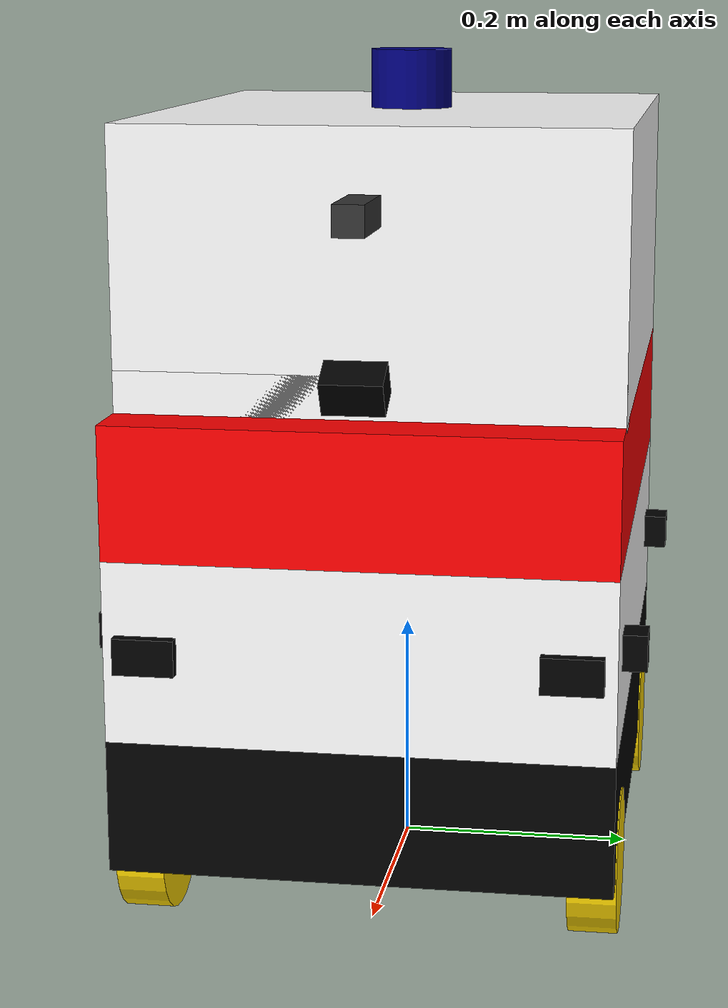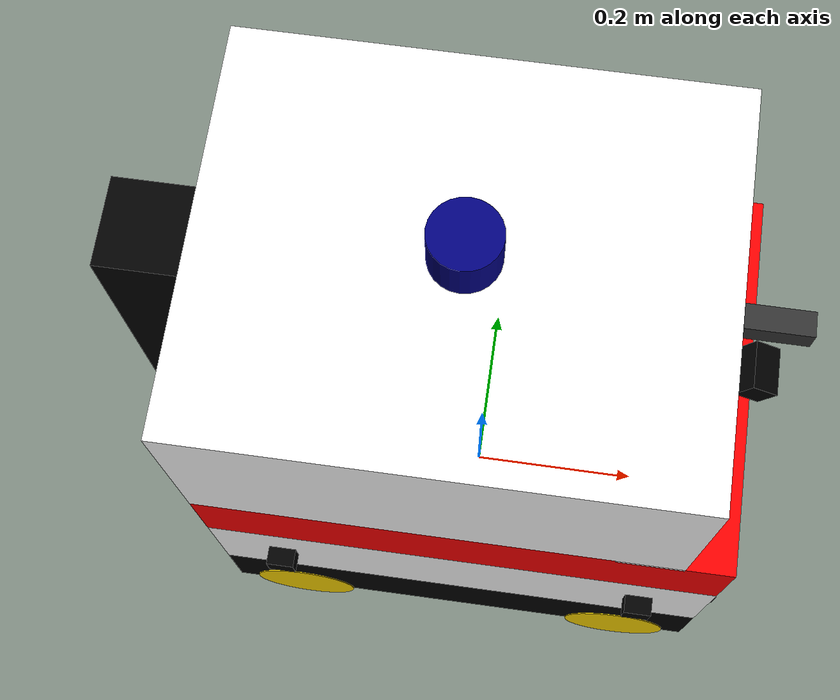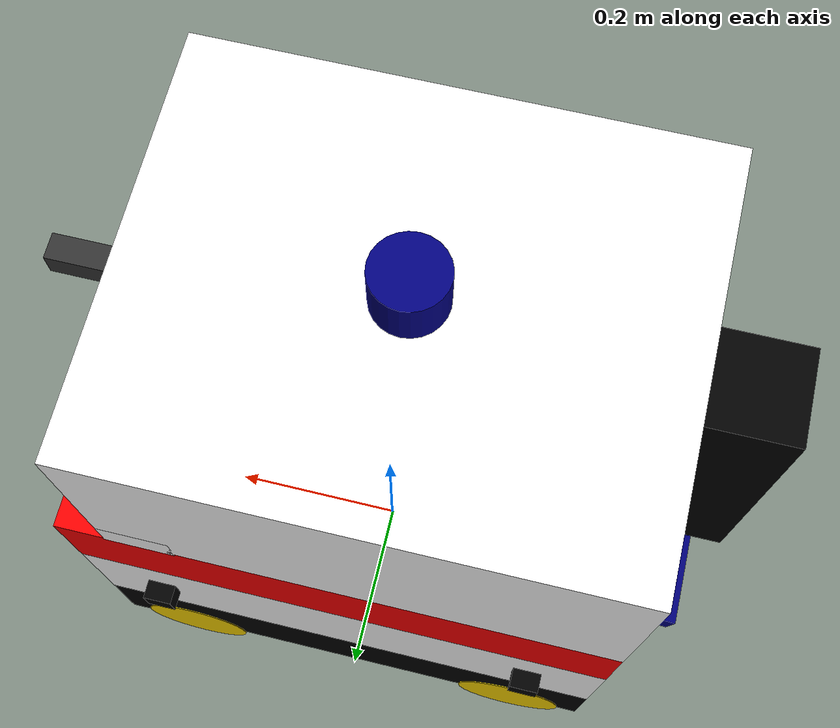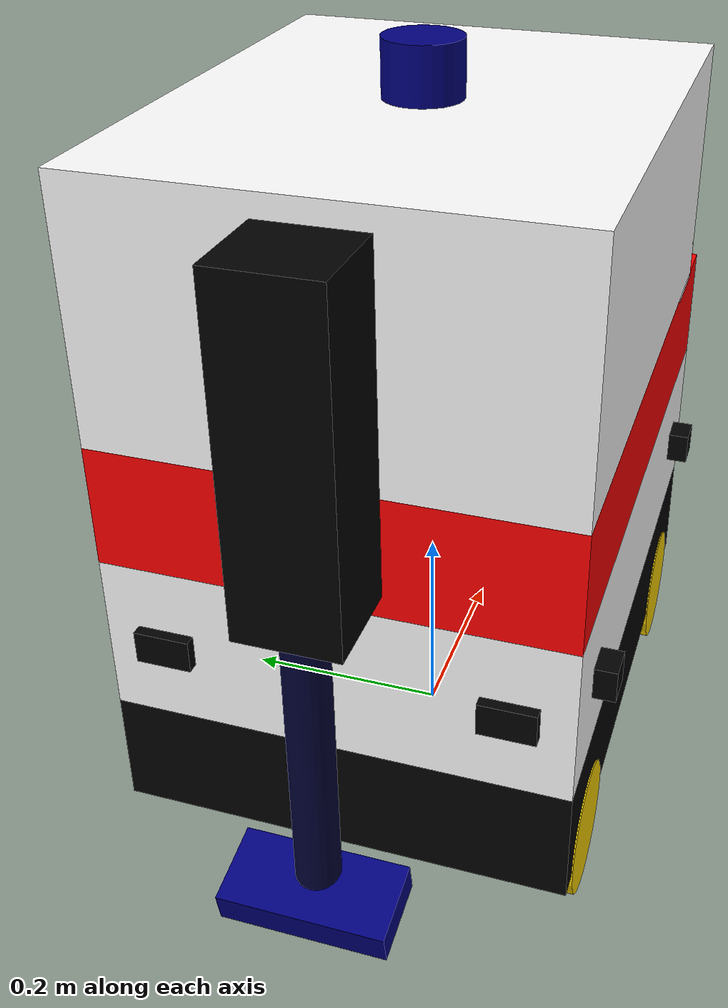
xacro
<?xml version="1.0"?>
<robot xmlns:xacro="http://www.ros.org/wiki/xacro" name="cleaning_robot">

        <link name="base_footprint"/>
        <link name="base_link">
            <inertial>
                <origin xyz="0.0 0.0 0.0" rpy="0.0 0.0 0.0"/>
                <mass value="15.0"/>
                <inertia ixx="0.2253" ixy="0.0" ixz="0.0" iyy="0.3933" iyz="0.0" izz="0.5883"/>
            </inertial>
            <visual name="">
                <origin xyz="0.0 0.0 0.0" rpy="0.0 0.0 0.0"/>
                <geometry>
                    <box size="0.550 0.410 0.11"/>
                </geometry>
                <material name="black">
                    <color rgba="0.0 0.0 0.0 0.9"/>
                    <texture filename=""/>
                </material>
            </visual>
            <collision>
                <origin xyz="0.0 0.0 0.0" rpy="0.0 0.0 0.0"/>
                <geometry>
                    <box size="0.550 0.410 0.11"/>
                </geometry>
            </collision>
        </link>
        <joint name="base_link_joint" type="fixed">
            <origin xyz="0.0 0.0 0.115" rpy="0.0 0.0 0.0"/>
            <parent link="base_footprint"/>
            <child link="base_link"/>
            <axis xyz="0.0 0.0 0.0"/>
            <limit lower="0.0" upper="0.0" effort="0.0" velocity="0.0"/>
        </joint>

        <link name="front_right_wheel">
            <inertial>
                <origin xyz="0.0 0.0 0.0" rpy="0.0 0.0 0.0"/>
                <mass value="0.5"/>
                <inertia ixx="0.000517" ixy="0.0" ixz="0.0" iyy="0.000900" iyz="0.0" izz="0.000517"/>
            </inertial>
            <visual name="yellow">
                <origin xyz="0.0 0.0 0.0" rpy="1.5708 0.0 0.0"/>
                <geometry>
                    <cylinder radius="0.06" length="0.04"/>
                </geometry>
                <material name="yellow">
                    <color rgba="1.0 0.85 0.0 1.0"/>
                </material>
            </visual>
            <collision>
                <origin xyz="0.0 0.0 0.0" rpy="1.5708 0.0 0.0"/>
                <geometry>
                    <cylinder radius="0.06" length="0.04"/>
                </geometry>
            </collision>
        </link>
        <joint name="front_right_wheel_joint" type="continuous">
            <parent link="base_link"/>
            <child link="front_right_wheel"/>
            <origin xyz="0.1925 -0.186 -0.055" rpy="0.0 0.0 0.0"/>
            <axis xyz="0 1 0"/>
        </joint>

        <link name="front_left_wheel">
            <inertial>
                <origin xyz="0.0 0.0 0.0" rpy="0.0 0.0 0.0"/>
                <mass value="0.5"/>
                <inertia ixx="0.000517" ixy="0.0" ixz="0.0" iyy="0.000900" iyz="0.0" izz="0.000517"/>
            </inertial>
            <visual name="yellow">
                <origin xyz="0.0 0.0 0.0" rpy="1.5708 0.0 0.0"/>
                <geometry>
                    <cylinder radius="0.06" length="0.04"/>
                </geometry>
                <material name="yellow">
                    <color rgba="1.0 0.85 0.0 1.0"/>
                </material>
            </visual>
            <collision>
                <origin xyz="0.0 0.0 0.0" rpy="1.5708 0.0 0.0"/>
                <geometry>
                    <cylinder radius="0.06" length="0.04"/>
                </geometry>
            </collision>
        </link>
        <joint name="front_left_wheel_joint" type="continuous">
            <parent link="base_link"/>
            <child link="front_left_wheel"/>
            <origin xyz="0.1925 0.186 -0.055" rpy="0.0 0.0 0.0"/>
            <axis xyz="0 1 0"/>
        </joint>

        <link name="back_left_wheel">
            <inertial>
                <origin xyz="0.0 0.0 0.0" rpy="0.0 0.0 0.0"/>
                <mass value="0.5"/>
                <inertia ixx="0.000517" ixy="0.0" ixz="0.0" iyy="0.000900" iyz="0.0" izz="0.000517"/>
            </inertial>
            <visual name="yellow">
                <origin xyz="0.0 0.0 0.0" rpy="1.5708 0.0 0.0"/>
                <geometry>
                    <cylinder radius="0.06" length="0.04"/>
                </geometry>
                <material name="yellow">
                    <color rgba="1.0 0.85 0.0 1.0"/>
                </material>
            </visual>
            <collision>
                <origin xyz="0.0 0.0 0.0" rpy="1.5708 0.0 0.0"/>
                <geometry>
                    <cylinder radius="0.06" length="0.04"/>
                </geometry>
            </collision>
        </link>
        <joint name="back_left_wheel_joint" type="continuous">
            <parent link="base_link"/>
            <child link="back_left_wheel"/>
            <origin xyz="-0.1925 0.186 -0.055" rpy="0.0 0.0 0.0"/>
            <axis xyz="0 1 0"/>
        </joint>

        <link name="back_right_wheel">
            <inertial>
                <origin xyz="0.0 0.0 0.0" rpy="0.0 0.0 0.0"/>
                <mass value="0.5"/>
                <inertia ixx="0.000517" ixy="0.0" ixz="0.0" iyy="0.000900" iyz="0.0" izz="0.000517"/>
            </inertial>
            <visual name="yellow">
                <origin xyz="0.0 0.0 0.0" rpy="1.5708 0.0 0.0"/>
                <geometry>
                    <cylinder radius="0.06" length="0.04"/>
                </geometry>
                <material name="yellow">
                    <color rgba="1.0 0.85 0.0 1.0"/>
                </material>
            </visual>
            <collision>
                <origin xyz="0.0 0.0 0.0" rpy="1.5708 0.0 0.0"/>
                <geometry>
                    <cylinder radius="0.06" length="0.04"/>
                </geometry>
            </collision>
        </link>
        <joint name="back_right_wheel_joint" type="continuous">
            <parent link="base_link"/>
            <child link="back_right_wheel"/>
            <origin xyz="-0.1925 -0.186 -0.055" rpy="0.0 0.0 0.0"/>
            <axis xyz="0 1 0"/>
        </joint>

        <link name="uper_body">
            <inertial>
                <origin xyz="0.0 0.0 0.0" rpy="0.0 0.0 0.0"/>
                <mass value="4.0"/>
                <inertia ixx="0.0635" ixy="0.0" ixz="0.0" iyy="0.1083" iyz="0.0" izz="0.1569"/>
            </inertial>
            <visual name="white">
                <origin xyz="0.0 0.0 0.0" rpy="0.0 0.0 0.0"/>
                <geometry>
                    <box size="0.550 0.410 0.15"/>
                </geometry>
                <material name="white">
                    <color rgba="1.0 1.0 1.0 1.0"/>
                    <texture filename=""/>
                </material>
            </visual>
            <collision>
                <origin xyz="0.0 0.0 0.0" rpy="0.0 0.0 0.0"/>
                <geometry>
                    <box size="0.550 0.410 0.15"/>
                </geometry>
            </collision>
        </link>
        <joint name="uper_body_joint" type="fixed">
            <origin xyz="0.0 0.0 0.13" rpy="0.0 0.0 0.0"/>
            <parent link="base_link"/>
            <child link="uper_body"/>
            <axis xyz="0.0 0.0 0.0"/>
            <limit lower="0.0" upper="0.0" effort="0.0" velocity="0.0"/>
        </joint>

        <!-- ========== 8x ULTRASONICS — ALL FACE FORWARD HORIZONTALLY ========== -->

        <link name="front_right_ultrasonic">
            <inertial>
                <origin xyz="0.0 0.0 0.0" rpy="0.0 0.0 0.0"/>
                <mass value="0.1"/>
                <inertia ixx="0.0000283" ixy="0.0" ixz="0.0" iyy="0.0000150" iyz="0.0" izz="0.0000283"/>
            </inertial>
            <visual name="black">
                <origin xyz="0.0 0.0 0.0" rpy="0.0 0.0 0.0"/>
                <geometry>
                    <box size="0.03 0.05 0.03"/>
                </geometry>
                <material name="black">
                    <color rgba="0.0 0.0 0.0 0.9"/>
                    <texture filename=""/>
                </material>
            </visual>
            <collision>
                <origin xyz="0.0 0.0 0.0" rpy="0.0 0.0 0.0"/>
                <geometry>
                    <box size="0.03 0.05 0.03"/>
                </geometry>
            </collision>
        </link>
        <joint name="front_right_ultrasonic_joint" type="fixed">
            <origin xyz="0.27 -0.17 0.0" rpy="0.0 0.0 0.0"/>
            <parent link="uper_body"/>
            <child link="front_right_ultrasonic"/>
            <axis xyz="0.0 0.0 0.0"/>
            <limit lower="0.0" upper="0.0" effort="0.0" velocity="0.0"/>
        </joint>

        <link name="front_left_ultrasonic">
            <inertial>
                <origin xyz="0.0 0.0 0.0" rpy="0.0 0.0 0.0"/>
                <mass value="0.1"/>
                <inertia ixx="0.0000283" ixy="0.0" ixz="0.0" iyy="0.0000150" iyz="0.0" izz="0.0000283"/>
            </inertial>
            <visual name="black">
                <origin xyz="0.0 0.0 0.0" rpy="0.0 0.0 0.0"/>
                <geometry>
                    <box size="0.03 0.05 0.03"/>
                </geometry>
                <material name="black">
                    <color rgba="0.0 0.0 0.0 0.9"/>
                    <texture filename=""/>
                </material>
            </visual>
            <collision>
                <origin xyz="0.0 0.0 0.0" rpy="0.0 0.0 0.0"/>
                <geometry>
                    <box size="0.03 0.05 0.03"/>
                </geometry>
            </collision>
        </link>
        <joint name="front_left_ultrasonic_joint" type="fixed">
            <origin xyz="0.27 0.17 0.0" rpy="0.0 0.0 0.0"/>
            <parent link="uper_body"/>
            <child link="front_left_ultrasonic"/>
            <axis xyz="0.0 0.0 0.0"/>
            <limit lower="0.0" upper="0.0" effort="0.0" velocity="0.0"/>
        </joint>

        <link name="back_right_ultrasonic">
            <inertial>
                <origin xyz="0.0 0.0 0.0" rpy="0.0 0.0 0.0"/>
                <mass value="0.1"/>
                <inertia ixx="0.0000283" ixy="0.0" ixz="0.0" iyy="0.0000150" iyz="0.0" izz="0.0000283"/>
            </inertial>
            <visual name="black">
                <origin xyz="0.0 0.0 0.0" rpy="0.0 0.0 0.0"/>
                <geometry>
                    <box size="0.03 0.05 0.03"/>
                </geometry>
                <material name="black">
                    <color rgba="0.0 0.0 0.0 0.9"/>
                    <texture filename=""/>
                </material>
            </visual>
            <collision>
                <origin xyz="0.0 0.0 0.0" rpy="0.0 0.0 0.0"/>
                <geometry>
                    <box size="0.03 0.05 0.03"/>
                </geometry>
            </collision>
        </link>
        <joint name="back_right_ultrasonic_joint" type="fixed">
            <origin xyz="-0.27 -0.15 0.0" rpy="0.0 0.0 3.14159"/>
            <parent link="uper_body"/>
            <child link="back_right_ultrasonic"/>
            <axis xyz="0.0 0.0 0.0"/>
            <limit lower="0.0" upper="0.0" effort="0.0" velocity="0.0"/>
        </joint>

        <link name="back_left_ultrasonic">
            <inertial>
                <origin xyz="0.0 0.0 0.0" rpy="0.0 0.0 0.0"/>
                <mass value="0.1"/>
                <inertia ixx="0.0000283" ixy="0.0" ixz="0.0" iyy="0.0000150" iyz="0.0" izz="0.0000283"/>
            </inertial>
            <visual name="black">
                <origin xyz="0.0 0.0 0.0" rpy="0.0 0.0 0.0"/>
                <geometry>
                    <box size="0.03 0.05 0.03"/>
                </geometry>
                <material name="black">
                    <color rgba="0.0 0.0 0.0 0.9"/>
                    <texture filename=""/>
                </material>
            </visual>
            <collision>
                <origin xyz="0.0 0.0 0.0" rpy="0.0 0.0 0.0"/>
                <geometry>
                    <box size="0.03 0.05 0.03"/>
                </geometry>
            </collision>
        </link>
        <joint name="back_left_ultrasonic_joint" type="fixed">
            <origin xyz="-0.27 0.15 0.0" rpy="0.0 0.0 3.14159"/>
            <parent link="uper_body"/>
            <child link="back_left_ultrasonic"/>
            <axis xyz="0.0 0.0 0.0"/>
            <limit lower="0.0" upper="0.0" effort="0.0" velocity="0.0"/>
        </joint>

        <link name="rightside_front_ultrasonic">
            <inertial>
                <origin xyz="0.0 0.0 0.0" rpy="0.0 0.0 0.0"/>
                <mass value="0.1"/>
                <inertia ixx="0.0000150" ixy="0.0" ixz="0.0" iyy="0.0000283" iyz="0.0" izz="0.0000283"/>
            </inertial>
            <visual name="black">
                <origin xyz="0.0 0.0 0.0" rpy="0.0 0.0 0.0"/>
                <geometry>
                    <box size="0.05 0.03 0.03"/>
                </geometry>
                <material name="black">
                    <color rgba="0.0 0.0 0.0 0.9"/>
                    <texture filename=""/>
                </material>
            </visual>
            <collision>
                <origin xyz="0.0 0.0 0.0" rpy="0.0 0.0 0.0"/>
                <geometry>
                    <box size="0.05 0.03 0.03"/>
                </geometry>
            </collision>
        </link>
        <joint name="rightside_front_ultrasonic_joint" type="fixed">
            <origin xyz="0.20 -0.20 0.0" rpy="0.0 0.0 -1.5708"/>
            <parent link="uper_body"/>
            <child link="rightside_front_ultrasonic"/>
            <axis xyz="0.0 0.0 0.0"/>
            <limit lower="0.0" upper="0.0" effort="0.0" velocity="0.0"/>
        </joint>

        <link name="rightside_back_ultrasonic">
            <inertial>
                <origin xyz="0.0 0.0 0.0" rpy="0.0 0.0 0.0"/>
                <mass value="0.1"/>
                <inertia ixx="0.0000150" ixy="0.0" ixz="0.0" iyy="0.0000283" iyz="0.0" izz="0.0000283"/>
            </inertial>
            <visual name="black">
                <origin xyz="0.0 0.0 0.0" rpy="0.0 0.0 0.0"/>
                <geometry>
                    <box size="0.05 0.03 0.03"/>
                </geometry>
                <material name="black">
                    <color rgba="0.0 0.0 0.0 0.9"/>
                    <texture filename=""/>
                </material>
            </visual>
            <collision>
                <origin xyz="0.0 0.0 0.0" rpy="0.0 0.0 0.0"/>
                <geometry>
                    <box size="0.05 0.03 0.03"/>
                </geometry>
            </collision>
        </link>
        <joint name="rightside_back_ultrasonic_joint" type="fixed">
            <origin xyz="-0.20 -0.20 0.0" rpy="0.0 0.0 -1.5708"/>
            <parent link="uper_body"/>
            <child link="rightside_back_ultrasonic"/>
            <axis xyz="0.0 0.0 0.0"/>
            <limit lower="0.0" upper="0.0" effort="0.0" velocity="0.0"/>
        </joint>

        <link name="leftside_front_ultrasonic">
            <inertial>
                <origin xyz="0.0 0.0 0.0" rpy="0.0 0.0 0.0"/>
                <mass value="0.1"/>
                <inertia ixx="0.0000150" ixy="0.0" ixz="0.0" iyy="0.0000283" iyz="0.0" izz="0.0000283"/>
            </inertial>
            <visual name="black">
                <origin xyz="0.0 0.0 0.0" rpy="0.0 0.0 0.0"/>
                <geometry>
                    <box size="0.05 0.03 0.03"/>
                </geometry>
                <material name="black">
                    <color rgba="0.0 0.0 0.0 0.9"/>
                    <texture filename=""/>
                </material>
            </visual>
            <collision>
                <origin xyz="0.0 0.0 0.0" rpy="0.0 0.0 0.0"/>
                <geometry>
                    <box size="0.05 0.03 0.03"/>
                </geometry>
            </collision>
        </link>
        <joint name="leftside_front_ultrasonic_joint" type="fixed">
            <origin xyz="0.20 0.20 0.0" rpy="0.0 0.0 1.5708"/>
            <parent link="uper_body"/>
            <child link="leftside_front_ultrasonic"/>
            <axis xyz="0.0 0.0 0.0"/>
            <limit lower="0.0" upper="0.0" effort="0.0" velocity="0.0"/>
        </joint>

        <link name="leftside_back_ultrasonic">
            <inertial>
                <origin xyz="0.0 0.0 0.0" rpy="0.0 0.0 0.0"/>
                <mass value="0.1"/>
                <inertia ixx="0.0000150" ixy="0.0" ixz="0.0" iyy="0.0000283" iyz="0.0" izz="0.0000283"/>
            </inertial>
            <visual name="black">
                <origin xyz="0.0 0.0 0.0" rpy="0.0 0.0 0.0"/>
                <geometry>
                    <box size="0.05 0.03 0.03"/>
                </geometry>
                <material name="black">
                    <color rgba="0.0 0.0 0.0 0.9"/>
                    <texture filename=""/>
                </material>
            </visual>
            <collision>
                <origin xyz="0.0 0.0 0.0" rpy="0.0 0.0 0.0"/>
                <geometry>
                    <box size="0.05 0.03 0.03"/>
                </geometry>
            </collision>
        </link>
        <joint name="leftside_back_ultrasonic_joint" type="fixed">
            <origin xyz="-0.20 0.20 0.0" rpy="0.0 0.0 1.5708"/>
            <parent link="uper_body"/>
            <child link="leftside_back_ultrasonic"/>
            <axis xyz="0.0 0.0 0.0"/>
            <limit lower="0.0" upper="0.0" effort="0.0" velocity="0.0"/>
        </joint>

        <!-- ========== UPPER BODY LAYERS ========== -->

        <link name="red_uper_body">
            <inertial>
                <origin xyz="0.0 0.0 0.0" rpy="0.0 0.0 0.0"/>
                <mass value="3.0"/>
                <inertia ixx="0.0451" ixy="0.0" ixz="0.0" iyy="0.0787" iyz="0.0" izz="0.1177"/>
            </inertial>
            <visual name="red">
                <origin xyz="0.0 0.0 0.0" rpy="0.0 0.0 0.0"/>
                <geometry>
                    <box size="0.550 0.410 0.11"/>
                </geometry>
                <material name="red">
                    <color rgba="1.0 0.0 0.0 1.0"/>
                    <texture filename=""/>
                </material>
            </visual>
            <collision>
                <origin xyz="0.0 0.0 0.0" rpy="0.0 0.0 0.0"/>
                <geometry>
                    <box size="0.550 0.410 0.11"/>
                </geometry>
            </collision>
        </link>
        <joint name="red_uper_body_joint" type="fixed">
            <origin xyz="0.0 0.0 0.13" rpy="0.0 0.0 0.0"/>
            <parent link="uper_body"/>
            <child link="red_uper_body"/>
            <axis xyz="0.0 0.0 0.0"/>
            <limit lower="0.0" upper="0.0" effort="0.0" velocity="0.0"/>
        </joint>

        <link name="2nd_white_uper_body">
            <inertial>
                <origin xyz="0.0 0.0 0.0" rpy="0.0 0.0 0.0"/>
                <mass value="3.0"/>
                <inertia ixx="0.0552" ixy="0.0" ixz="0.0" iyy="0.0757" iyz="0.0" izz="0.1045"/>
            </inertial>
            <visual name="white">
                <origin xyz="0.0 0.0 0.0" rpy="0.0 0.0 0.0"/>
                <geometry>
                    <box size="0.50 0.410 0.23"/>
                </geometry>
                <material name="white">
                    <color rgba="1.0 1.0 1.0 1.0"/>
                    <texture filename=""/>
                </material>
            </visual>
            <collision>
                <origin xyz="0.0 0.0 0.0" rpy="0.0 0.0 0.0"/>
                <geometry>
                    <box size="0.50 0.410 0.23"/>
                </geometry>
            </collision>
        </link>
        <joint name="2nd_white_uper_body_joint" type="fixed">
            <origin xyz="-0.025 0.0 0.17" rpy="0.0 0.0 0.0"/>
            <parent link="red_uper_body"/>
            <child link="2nd_white_uper_body"/>
            <axis xyz="0.0 0.0 0.0"/>
            <limit lower="0.0" upper="0.0" effort="0.0" velocity="0.0"/>
        </joint>

        <!-- ========== CAMERA ROD + IMX-500 ========== -->

        <link name="camera_rod">
            <inertial>
                <origin xyz="0.0 0.0 0.0" rpy="0.0 0.0 0.0"/>
                <mass value="0.2"/>
                <inertia ixx="0.002828" ixy="0.0" ixz="0.0" iyy="0.000108" iyz="0.0" izz="0.002883"/>
            </inertial>
            <visual name="">
                <origin xyz="0.0 0.0 0.0" rpy="0.0 0.0 0.0"/>
                <geometry>
                    <box size="0.07 0.410 0.04"/>
                </geometry>
                <material name="white">
                    <color rgba="1.0 1.0 1.0 1.0"/>
                    <texture filename=""/>
                </material>
            </visual>
            <collision>
                <origin xyz="0.0 0.0 0.0" rpy="0.0 0.0 0.0"/>
                <geometry>
                    <box size="0.07 0.410 0.04"/>
                </geometry>
            </collision>
        </link>
        <joint name="camera_rod_joint" type="fixed">
            <origin xyz="0.215 0.0 -0.10" rpy="0.0 0.0 0.0"/>
            <parent link="2nd_white_uper_body"/>
            <child link="camera_rod"/>
            <axis xyz="0.0 0.0 0.0"/>
            <limit lower="0.0" upper="0.0" effort="0.0" velocity="0.0"/>
        </joint>

        <link name="camera">
            <inertial>
                <origin xyz="0.0 0.0 0.0" rpy="0.0 0.0 0.0"/>
                <mass value="0.2"/>
                <inertia ixx="0.0000567" ixy="0.0" ixz="0.0" iyy="0.0000300" iyz="0.0" izz="0.0000567"/>
            </inertial>
            <visual name="">
                <origin xyz="0.0 0.0 0.0" rpy="0.0 0.0 0.0"/>
                <geometry>
                    <box size="0.03 0.05 0.03"/>
                </geometry>
                <material name="cam_black">
                    <color rgba="0.0 0.0 0.0 1.0"/>
                    <texture filename=""/>
                </material>
            </visual>
            <collision>
                <origin xyz="0.0 0.0 0.0" rpy="0.0 0.0 0.0"/>
                <geometry>
                    <box size="0.03 0.05 0.03"/>
                </geometry>
            </collision>
        </link>
        <joint name="camera_joint" type="fixed">
            <origin xyz="0.30 0.0 -0.08" rpy="0.0 0.5 0.0"/>
            <parent link="2nd_white_uper_body"/>
            <child link="camera"/>
            <axis xyz="0.0 0.0 0.0"/>
            <limit lower="0.0" upper="0.0" effort="0.0" velocity="0.0"/>
        </joint>

        <link name="camera_optical"/>
        <joint name="camera_optical_joint" type="fixed">
            <origin xyz="0.0 0.0 0.0" rpy="-1.5708 0.0 -1.5708"/>
            <parent link="camera"/>
            <child link="camera_optical"/>
        </joint>

        <!-- ========== LIDAR ========== -->

        <link name="lidar">
            <inertial>
                <origin xyz="0.0 0.0 0.0" rpy="0.0 0.0 0.0"/>
                <mass value="0.2"/>
                <inertia ixx="0.0001029" ixy="0.0" ixz="0.0" iyy="0.0001029" iyz="0.0" izz="0.0001225"/>
            </inertial>
            <visual name="">
                <origin xyz="0.0 0.0 0.0" rpy="0.0 0.0 0.0"/>
                <geometry>
                    <cylinder radius="0.035" length="0.05"/>
                </geometry>
                <material name="">
                    <color rgba="0.0 0.0 0.5 1.0"/>
                    <texture filename=""/>
                </material>
            </visual>
            <collision>
                <origin xyz="0.0 0.0 0.0" rpy="0.0 0.0 0.0"/>
                <geometry>
                    <cylinder radius="0.035" length="0.05"/>
                </geometry>
            </collision>
        </link>
        <joint name="lidar_joint" type="fixed">
            <origin xyz="0.0 0.0 0.14" rpy="0.0 0.0 0.0"/>
            <parent link="2nd_white_uper_body"/>
            <child link="lidar"/>
            <axis xyz="0.0 0.0 0.0"/>
            <limit lower="0.0" upper="0.0" effort="0.0" velocity="0.0"/>
        </joint>

        <!-- ========== VACUUM ========== -->

        <link name="vacuum_cover">
            <inertial>
                <origin xyz="0.0 0.0 0.0" rpy="0.0 0.0 0.0"/>
                <mass value="0.5"/>
                <inertia ixx="0.004088" ixy="0.0" ixz="0.0" iyy="0.004088" iyz="0.0" izz="0.000675"/>
            </inertial>
            <visual name="">
                <origin xyz="0.0 0.0 0.0" rpy="0.0 0.0 0.0"/>
                <geometry>
                    <box size="0.09 0.09 0.3"/>
                </geometry>
                <material name="">
                    <color rgba="0.0 0.0 0.0 1.0"/>
                    <texture filename=""/>
                </material>
            </visual>
            <collision>
                <origin xyz="0.0 0.0 0.0" rpy="0.0 0.0 0.0"/>
                <geometry>
                    <box size="0.09 0.09 0.3"/>
                </geometry>
            </collision>
        </link>
        <joint name="vacuum_cover_joint" type="fixed">
            <origin xyz="-0.29 0.0 -0.055" rpy="0.0 0.0 0.0"/>
            <parent link="2nd_white_uper_body"/>
            <child link="vacuum_cover"/>
            <axis xyz="0.0 0.0 0.0"/>
            <limit lower="0.0" upper="0.0" effort="0.0" velocity="0.0"/>
        </joint>

        <link name="vacuum_pipe">
            <inertial>
                <origin xyz="0.0 0.0 0.0" rpy="0.0 0.0 0.0"/>
                <mass value="0.3"/>
                <inertia ixx="0.004030" ixy="0.0" ixz="0.0" iyy="0.004030" iyz="0.0" izz="0.000060"/>
            </inertial>
            <visual name="">
                <origin xyz="0.0 0.0 0.0" rpy="0.0 0.0 0.0"/>
                <geometry>
                    <cylinder radius="0.020" length="0.4"/>
                </geometry>
                <material name="">
                    <color rgba="0.0 0.0 0.2 1.0"/>
                    <texture filename=""/>
                </material>
            </visual>
            <collision>
                <origin xyz="0.0 0.0 0.0" rpy="0.0 0.0 0.0"/>
                <geometry>
                    <cylinder radius="0.020" length="0.3"/>
                </geometry>
            </collision>
        </link>
        <joint name="vacuum_pipe_joint" type="fixed">
            <origin xyz="-0.01 0.0 -0.24" rpy="0.0 0.0 0.0"/>
            <parent link="vacuum_cover"/>
            <child link="vacuum_pipe"/>
            <axis xyz="0.0 0.0 0.0"/>
            <limit lower="0.0" upper="0.0" effort="0.0" velocity="0.0"/>
        </joint>

        <link name="vacuum">
            <inertial>
                <origin xyz="0.0 0.0 0.0" rpy="0.0 0.0 0.0"/>
                <mass value="0.3"/>
                <inertia ixx="0.0005850" ixy="0.0" ixz="0.0" iyy="0.0001450" iyz="0.0" izz="0.0006850"/>
            </inertial>
            <visual name="">
                <origin xyz="0.0 0.0 0.0" rpy="0.0 0.0 0.0"/>
                <geometry>
                    <box size="0.07 0.15 0.03"/>
                </geometry>
                <material name="">
                    <color rgba="0.0 0.0 0.5 1.0"/>
                    <texture filename=""/>
                </material>
            </visual>
            <collision>
                <origin xyz="0.0 0.0 0.0" rpy="0.0 0.0 0.0"/>
                <geometry>
                    <box size="0.07 0.15 0.03"/>
                </geometry>
            </collision>
        </link>
        <joint name="vacuum_joint" type="fixed">
            <origin xyz="-0.01 0.0 -0.19" rpy="0.0 -0.2 0.0"/>
            <parent link="vacuum_pipe"/>
            <child link="vacuum"/>
            <axis xyz="0.0 0.0 0.0"/>
            <limit lower="0.0" upper="0.0" effort="0.0" velocity="0.0"/>
        </joint>

        <!-- ========== IMU ========== -->

        <link name="imu_link">
            <inertial>
                <origin xyz="0.0 0.0 0.0" rpy="0.0 0.0 0.0"/>
                <mass value="0.01"/>
                <inertia ixx="0.0000007" ixy="0.0" ixz="0.0" iyy="0.0000007" iyz="0.0" izz="0.0000007"/>
            </inertial>
            <visual>
                <origin xyz="0.0 0.0 0.0" rpy="0.0 0.0 0.0"/>
                <geometry><box size="0.02 0.02 0.02"/></geometry>
                <material name="black"><color rgba="0.0 0.0 0.0 1.0"/></material>
            </visual>
            <collision>
                <origin xyz="0.0 0.0 0.0" rpy="0.0 0.0 0.0"/>
                <geometry><box size="0.02 0.02 0.02"/></geometry>
            </collision>
        </link>
        <joint name="imu_joint" type="fixed">
            <origin xyz="0.0 0.0 0.0" rpy="0.0 0.0 0.0"/>
            <parent link="base_link"/>
            <child link="imu_link"/>
        </joint>

        <!-- ========== DEPTH CAMERA (Aurora930) ========== -->

        <link name="depth_camera">
            <inertial>
                <origin xyz="0.0 0.0 0.0" rpy="0.0 0.0 0.0"/>
                <mass value="0.15"/>
                <inertia ixx="0.0000156" ixy="0.0" ixz="0.0"
                         iyy="0.0001091" iyz="0.0" izz="0.0001091"/>
            </inertial>
            <visual>
                <origin xyz="0.0 0.0 0.0" rpy="0.0 0.0 0.0"/>
                <geometry>
                    <box size="0.09 0.025 0.025"/>
                </geometry>
                <material name="dark_grey">
                    <color rgba="0.2 0.2 0.2 1.0"/>
                </material>
            </visual>
            <collision>
                <origin xyz="0.0 0.0 0.0" rpy="0.0 0.0 0.0"/>
                <geometry>
                    <box size="0.09 0.025 0.025"/>
                </geometry>
            </collision>
        </link>
        <joint name="depth_camera_joint" type="fixed">
            <origin xyz="0.28 0.0 0.05" rpy="0.0 0.0 0.0"/>
            <parent link="2nd_white_uper_body"/>
            <child link="depth_camera"/>
            <axis xyz="0.0 0.0 0.0"/>
            <limit lower="0.0" upper="0.0" effort="0.0" velocity="0.0"/>
        </joint>

        <link name="depth_camera_optical"/>
        <joint name="depth_camera_optical_joint" type="fixed">
            <origin xyz="0.0 0.0 0.0" rpy="-1.5708 0.0 -1.5708"/>
            <parent link="depth_camera"/>
            <child link="depth_camera_optical"/>
        </joint>

       <xacro:include filename="$(find robot_description)/urdf/gazebo_plugins.xacro"/>

</robot>
